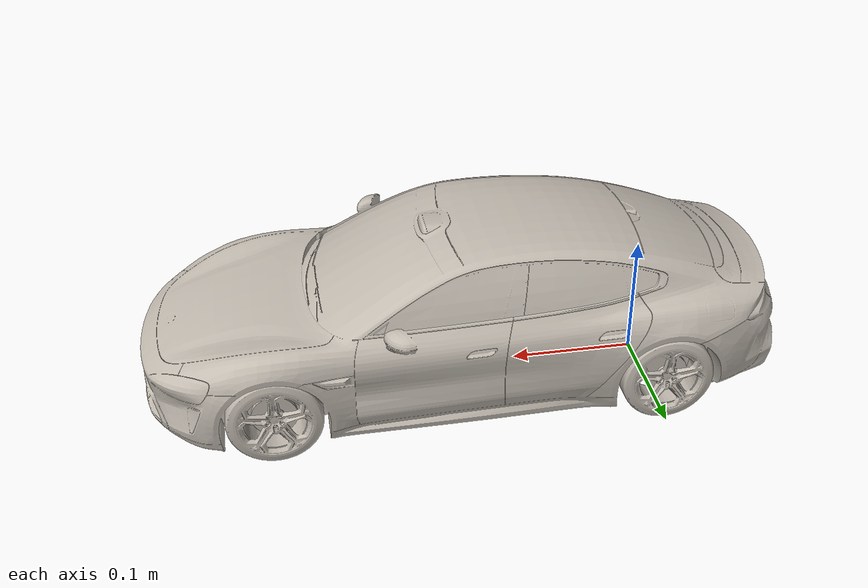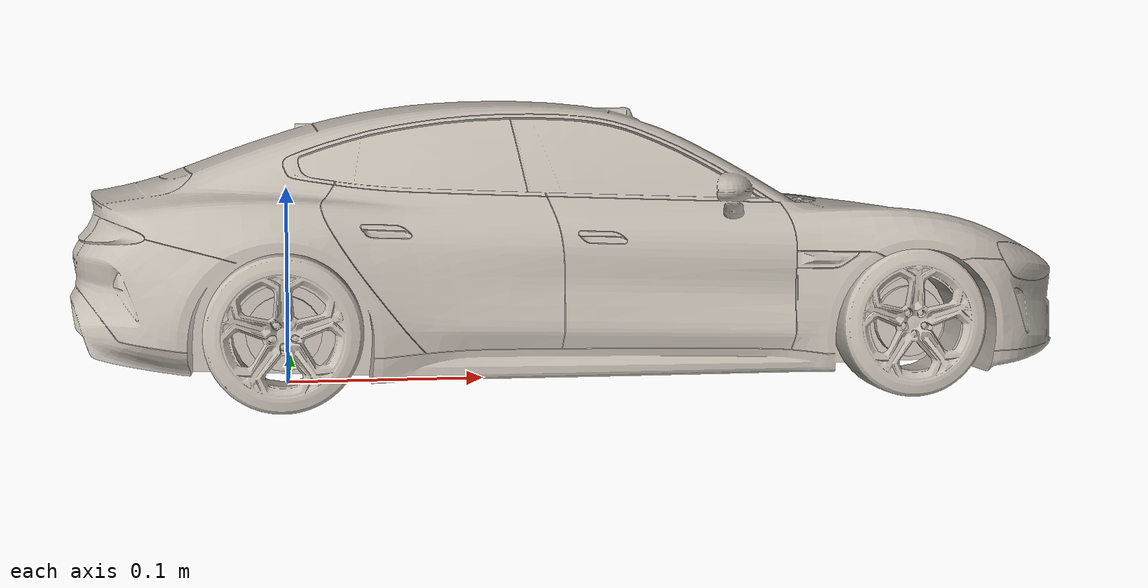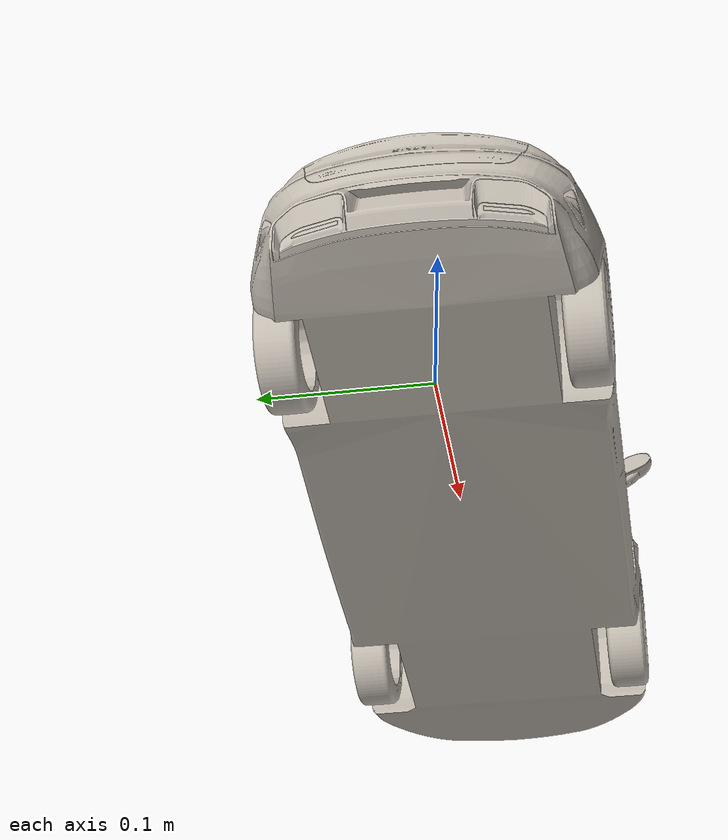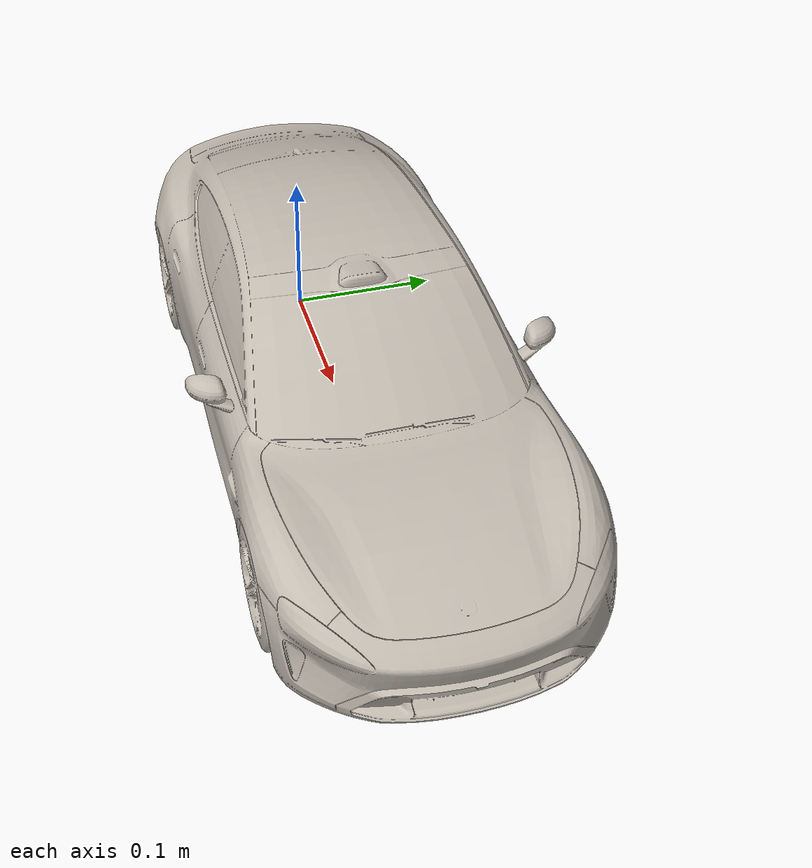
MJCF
<mujoco model="car">
  <compiler angle="radian" autolimits="true"/>

  <asset>
    <mesh name="car_body" file="car/car_body.obj" />
    <mesh name="wheel" file="car/car_wheel.obj"/>
    <texture name="texture" type="2d" file="car/texture_map.png" />
    <material name="material" texture="texture" />
  </asset>

  <default>
    <default class="wheel">
      <geom type="ellipsoid" size="0.036 0.015 0.036" friction="2 0.005 0.0001" mass="1"/>
    </default>
    <default class="wheel_mesh">
      <geom type="mesh" mesh="wheel" material="material" contype="0" conaffinity="0"/>
    </default>
    <default class="steering">
      <joint type="hinge" axis="0 0 1" limited="true" frictionloss="0.01" damping="0.001" armature="0.0002" range="-0.38 0.38"/>
    </default>
    <default class="throttle">
      <joint type="hinge" axis="0 1 0" frictionloss="0.001" damping="0.01" armature="0.01" limited="false"/>
    </default>
  </default>

  <worldbody>
    <body name="car" pos="0.15 0.0 0.0" euler="0 0 0.0">
      <joint type="free"/>
      <geom mesh="car_body" pos="0 0 0" type="mesh" material="material" contype="0" conaffinity="0" group="2" mass="10"/>

      <body name="steering_wheel" pos="0.15 0 0.036">
        <joint class="steering" name="steering_wheel"/>
        <geom class="wheel" contype="0" conaffinity="0" group="2" mass="0.01" rgba="0 0 0 0.01"/>
      </body>

      <body name="wheel_fl" pos="0.15 0.085 0.036">
        <joint class="steering" name="wheel_fl_steering"/>
        <joint class="throttle" name="wheel_fl_throttle"/>
        <geom class="wheel" group="3"/>
        <geom class="wheel_mesh" group="2"/>
      </body>
      <body name="wheel_fr" pos="0.15 -0.085 0.036">
        <joint class="steering" name="wheel_fr_steering"/>
        <joint class="throttle" name="wheel_fr_throttle"/>
        <geom class="wheel" group="3"/>
        <geom class="wheel_mesh" euler="0 0 3.14159" group="2"/>
      </body>
      <body name="wheel_bl" pos="-0.15 0.085 0.036">
        <joint class="throttle" name="wheel_bl_throttle"/>
        <geom class="wheel" group="3"/>
        <geom class="wheel_mesh" group="2"/>
      </body>
      <body name="wheel_br" pos="-0.15 -0.085 0.036">
        <joint class="throttle" name="wheel_br_throttle"/>
        <geom class="wheel" group="3"/>
        <geom class="wheel_mesh" euler="0 0 3.14159" group="2"/>
      </body>
    </body>
  </worldbody>

  <actuator>
    <position class="steering" kp="25.0" name="steering_pos" joint="steering_wheel"/>
    <velocity kv="30" forcelimited="true" forcerange="-500 500" name="throttle_velocity" tendon="throttle"/>
  </actuator>

  <equality>
    <!-- taylor expansion of delta_l = arctan(L/(L/tan(delta) - W/2)) with L, W in reference to kinematic car model -->
    <joint joint1="wheel_fl_steering" joint2="steering_wheel" polycoef="0 1 0.283334 0.080278 -0.0717"/>
    <!-- taylor expansion of delta_r = arctan(L/(L/tan(delta) + W/2)) with L,W in reference to kinematic car model -->
    <joint joint1="wheel_fr_steering" joint2="steering_wheel" polycoef="0 1 -0.283334 0.080278 0.0717"/>
  </equality>

  <tendon>
    <fixed name="throttle">
      <joint joint="wheel_fl_throttle" coef="0.25"/>
      <joint joint="wheel_fr_throttle" coef="0.25"/>
      <joint joint="wheel_bl_throttle" coef="0.25"/>
      <joint joint="wheel_br_throttle" coef="0.25"/>
    </fixed>
  </tendon>
</mujoco>
